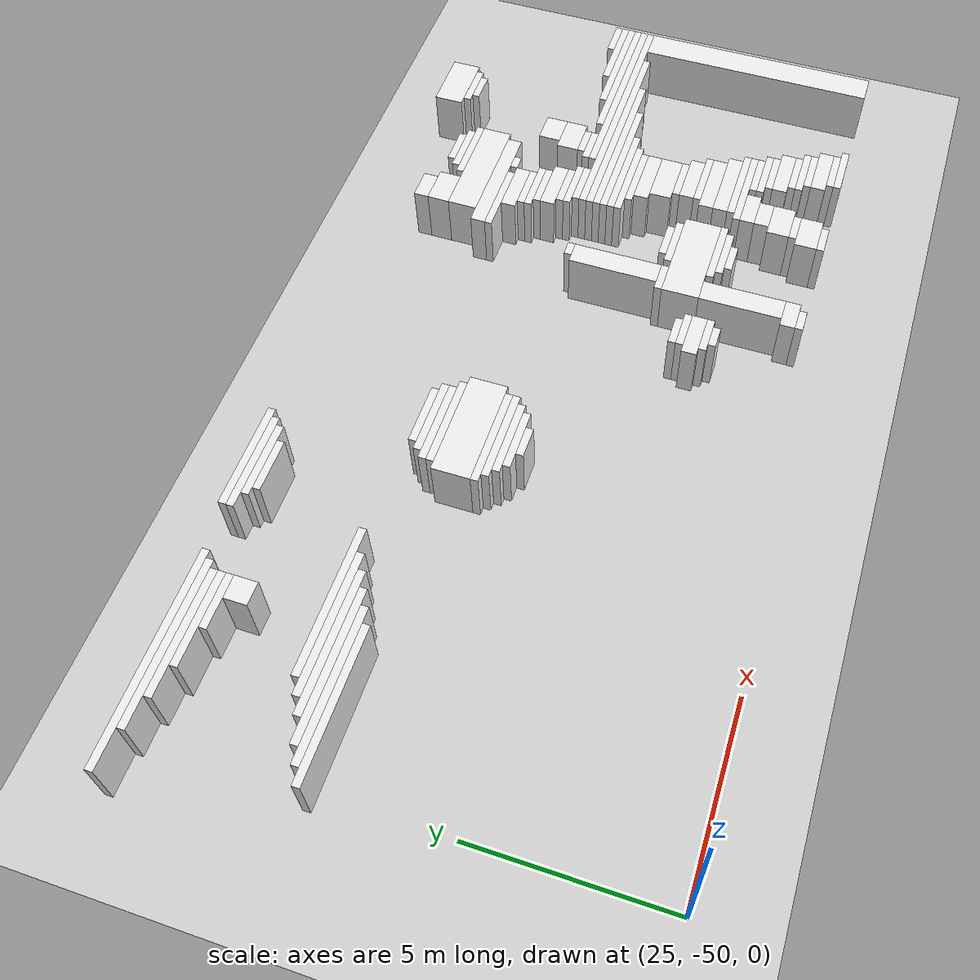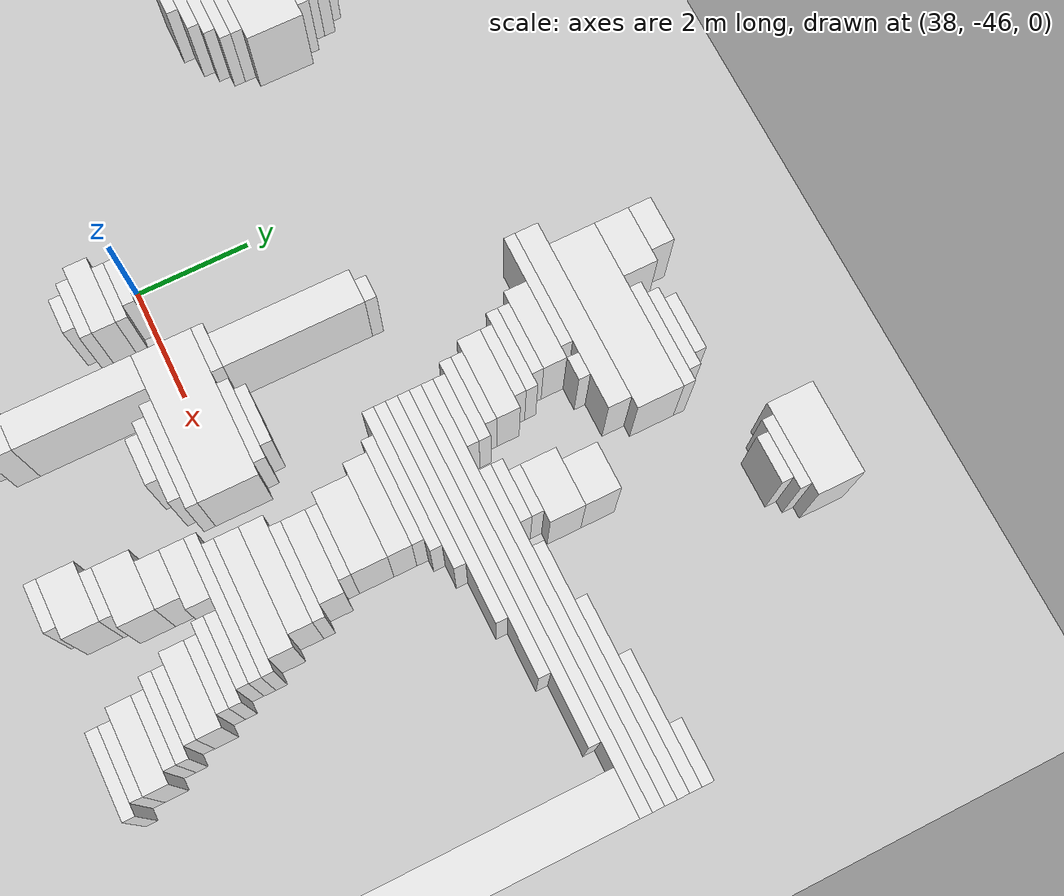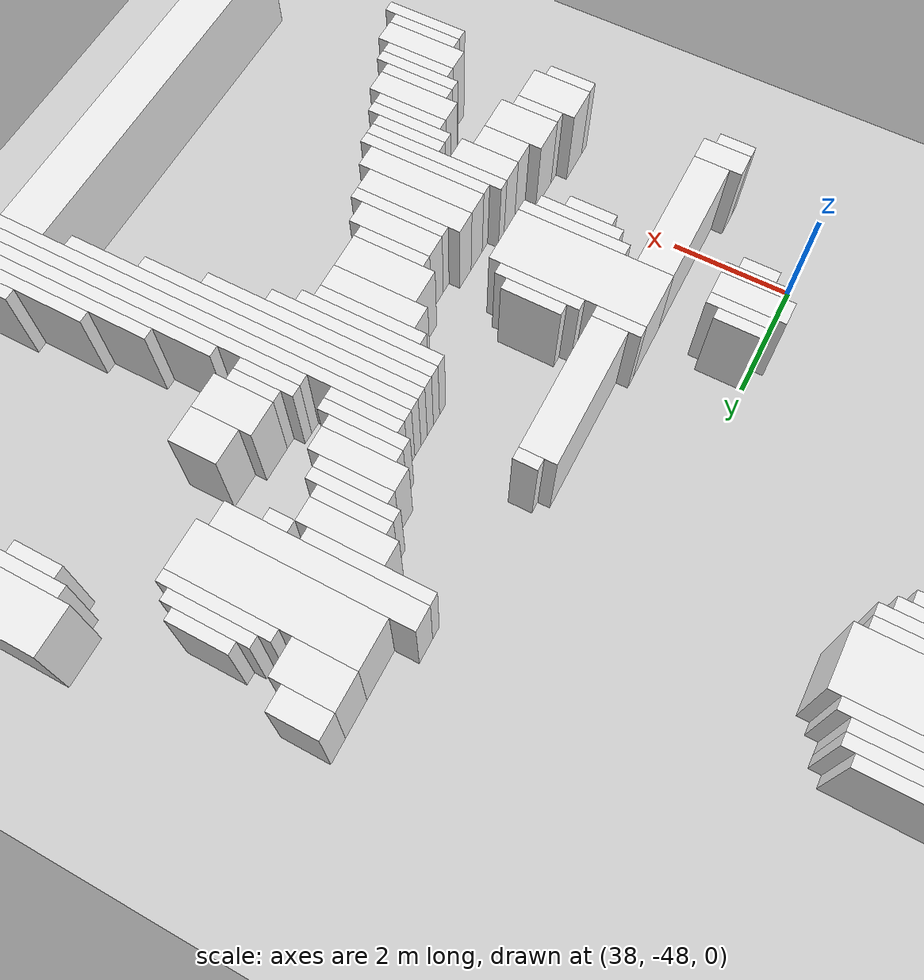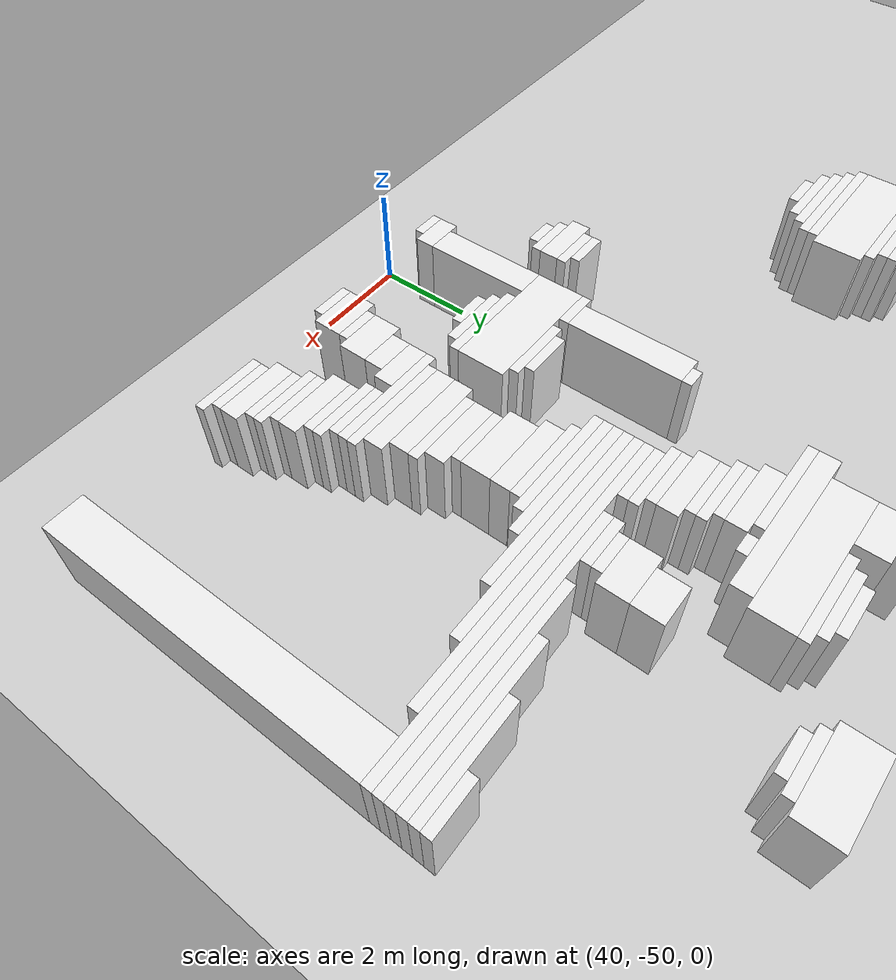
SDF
<sdf version="1.7">
 <world name="default">
  <model name="ground_plane">
   <static>1</static>
   <link name="link">
    <collision name="collision">
     <geometry><plane><normal>0 0 1</normal><size>120 120</size></plane></geometry>
    </collision>
    <visual name="visual">
     <geometry><plane><normal>0 0 1</normal><size>120 120</size></plane></geometry>
     <material>
      <script><uri>file://media/materials/scripts/gazebo.material</uri><name>Gazebo/Grey</name></script>
     </material>
    </visual>
   </link>
  </model>
  <model name="random_complex_02_model">
   <static>1</static>
   <link name="obs_3238">
    <pose>31.6000 -37.3000 0.8000 0 0 0</pose>
    <collision name="obs_3238_col"><geometry><box><size>2.8000 0.2000 1.6000</size></box></geometry></collision>
    <visual name="obs_3238_vis">
     <geometry><box><size>2.8000 0.2000 1.6000</size></box></geometry>
     <material>
      <script><uri>file://media/materials/scripts/gazebo.material</uri><name>Gazebo/White</name></script>
     </material>
    </visual>
   </link>
   <link name="obs_3243">
    <pose>26.3000 -37.5000 0.8000 0 0 0</pose>
    <collision name="obs_3243_col"><geometry><box><size>5.4000 0.2000 1.6000</size></box></geometry></collision>
    <visual name="obs_3243_vis">
     <geometry><box><size>5.4000 0.2000 1.6000</size></box></geometry>
     <material>
      <script><uri>file://media/materials/scripts/gazebo.material</uri><name>Gazebo/White</name></script>
     </material>
    </visual>
   </link>
   <link name="obs_3244">
    <pose>31.5000 -37.5000 0.8000 0 0 0</pose>
    <collision name="obs_3244_col"><geometry><box><size>2.6000 0.2000 1.6000</size></box></geometry></collision>
    <visual name="obs_3244_vis">
     <geometry><box><size>2.6000 0.2000 1.6000</size></box></geometry>
     <material>
      <script><uri>file://media/materials/scripts/gazebo.material</uri><name>Gazebo/White</name></script>
     </material>
    </visual>
   </link>
   <link name="obs_3248">
    <pose>26.7000 -37.7000 0.8000 0 0 0</pose>
    <collision name="obs_3248_col"><geometry><box><size>4.2000 0.2000 1.6000</size></box></geometry></collision>
    <visual name="obs_3248_vis">
     <geometry><box><size>4.2000 0.2000 1.6000</size></box></geometry>
     <material>
      <script><uri>file://media/materials/scripts/gazebo.material</uri><name>Gazebo/White</name></script>
     </material>
    </visual>
   </link>
   <link name="obs_3249">
    <pose>31.6000 -37.7000 0.8000 0 0 0</pose>
    <collision name="obs_3249_col"><geometry><box><size>2.0000 0.2000 1.6000</size></box></geometry></collision>
    <visual name="obs_3249_vis">
     <geometry><box><size>2.0000 0.2000 1.6000</size></box></geometry>
     <material>
      <script><uri>file://media/materials/scripts/gazebo.material</uri><name>Gazebo/White</name></script>
     </material>
    </visual>
   </link>
   <link name="obs_3252">
    <pose>45.4000 -37.6000 0.8000 0 0 0</pose>
    <collision name="obs_3252_col"><geometry><box><size>1.6000 0.8000 1.6000</size></box></geometry></collision>
    <visual name="obs_3252_vis">
     <geometry><box><size>1.6000 0.8000 1.6000</size></box></geometry>
     <material>
      <script><uri>file://media/materials/scripts/gazebo.material</uri><name>Gazebo/White</name></script>
     </material>
    </visual>
   </link>
   <link name="obs_3255">
    <pose>27.0000 -37.9000 0.8000 0 0 0</pose>
    <collision name="obs_3255_col"><geometry><box><size>3.2000 0.2000 1.6000</size></box></geometry></collision>
    <visual name="obs_3255_vis">
     <geometry><box><size>3.2000 0.2000 1.6000</size></box></geometry>
     <material>
      <script><uri>file://media/materials/scripts/gazebo.material</uri><name>Gazebo/White</name></script>
     </material>
    </visual>
   </link>
   <link name="obs_3256">
    <pose>31.5000 -37.9000 0.8000 0 0 0</pose>
    <collision name="obs_3256_col"><geometry><box><size>1.4000 0.2000 1.6000</size></box></geometry></collision>
    <visual name="obs_3256_vis">
     <geometry><box><size>1.4000 0.2000 1.6000</size></box></geometry>
     <material>
      <script><uri>file://media/materials/scripts/gazebo.material</uri><name>Gazebo/White</name></script>
     </material>
    </visual>
   </link>
   <link name="obs_3261">
    <pose>27.4000 -38.1000 0.8000 0 0 0</pose>
    <collision name="obs_3261_col"><geometry><box><size>2.4000 0.2000 1.6000</size></box></geometry></collision>
    <visual name="obs_3261_vis">
     <geometry><box><size>2.4000 0.2000 1.6000</size></box></geometry>
     <material>
      <script><uri>file://media/materials/scripts/gazebo.material</uri><name>Gazebo/White</name></script>
     </material>
    </visual>
   </link>
   <link name="obs_3262">
    <pose>45.4000 -38.1000 0.8000 0 0 0</pose>
    <collision name="obs_3262_col"><geometry><box><size>1.2000 0.2000 1.6000</size></box></geometry></collision>
    <visual name="obs_3262_vis">
     <geometry><box><size>1.2000 0.2000 1.6000</size></box></geometry>
     <material>
      <script><uri>file://media/materials/scripts/gazebo.material</uri><name>Gazebo/White</name></script>
     </material>
    </visual>
   </link>
   <link name="obs_3263">
    <pose>41.2000 -38.2000 0.8000 0 0 0</pose>
    <collision name="obs_3263_col"><geometry><box><size>0.8000 0.4000 1.6000</size></box></geometry></collision>
    <visual name="obs_3263_vis">
     <geometry><box><size>0.8000 0.4000 1.6000</size></box></geometry>
     <material>
      <script><uri>file://media/materials/scripts/gazebo.material</uri><name>Gazebo/White</name></script>
     </material>
    </visual>
   </link>
   <link name="obs_3265">
    <pose>27.9000 -38.3000 0.8000 0 0 0</pose>
    <collision name="obs_3265_col"><geometry><box><size>1.4000 0.2000 1.6000</size></box></geometry></collision>
    <visual name="obs_3265_vis">
     <geometry><box><size>1.4000 0.2000 1.6000</size></box></geometry>
     <material>
      <script><uri>file://media/materials/scripts/gazebo.material</uri><name>Gazebo/White</name></script>
     </material>
    </visual>
   </link>
   <link name="obs_3266">
    <pose>45.4000 -38.3000 0.8000 0 0 0</pose>
    <collision name="obs_3266_col"><geometry><box><size>0.8000 0.2000 1.6000</size></box></geometry></collision>
    <visual name="obs_3266_vis">
     <geometry><box><size>0.8000 0.2000 1.6000</size></box></geometry>
     <material>
      <script><uri>file://media/materials/scripts/gazebo.material</uri><name>Gazebo/White</name></script>
     </material>
    </visual>
   </link>
   <link name="obs_3270">
    <pose>42.9000 -38.5000 0.8000 0 0 0</pose>
    <collision name="obs_3270_col"><geometry><box><size>1.0000 0.2000 1.6000</size></box></geometry></collision>
    <visual name="obs_3270_vis">
     <geometry><box><size>1.0000 0.2000 1.6000</size></box></geometry>
     <material>
      <script><uri>file://media/materials/scripts/gazebo.material</uri><name>Gazebo/White</name></script>
     </material>
    </visual>
   </link>
   <link name="obs_3279">
    <pose>42.9000 -38.7000 0.8000 0 0 0</pose>
    <collision name="obs_3279_col"><geometry><box><size>1.4000 0.2000 1.6000</size></box></geometry></collision>
    <visual name="obs_3279_vis">
     <geometry><box><size>1.4000 0.2000 1.6000</size></box></geometry>
     <material>
      <script><uri>file://media/materials/scripts/gazebo.material</uri><name>Gazebo/White</name></script>
     </material>
    </visual>
   </link>
   <link name="obs_3281">
    <pose>28.3000 -38.7000 0.8000 0 0 0</pose>
    <collision name="obs_3281_col"><geometry><box><size>0.6000 0.6000 1.6000</size></box></geometry></collision>
    <visual name="obs_3281_vis">
     <geometry><box><size>0.6000 0.6000 1.6000</size></box></geometry>
     <material>
      <script><uri>file://media/materials/scripts/gazebo.material</uri><name>Gazebo/White</name></script>
     </material>
    </visual>
   </link>
   <link name="obs_3282">
    <pose>41.3000 -38.7000 0.8000 0 0 0</pose>
    <collision name="obs_3282_col"><geometry><box><size>1.0000 0.6000 1.6000</size></box></geometry></collision>
    <visual name="obs_3282_vis">
     <geometry><box><size>1.0000 0.6000 1.6000</size></box></geometry>
     <material>
      <script><uri>file://media/materials/scripts/gazebo.material</uri><name>Gazebo/White</name></script>
     </material>
    </visual>
   </link>
   <link name="obs_3288">
    <pose>42.9000 -38.9000 0.8000 0 0 0</pose>
    <collision name="obs_3288_col"><geometry><box><size>1.8000 0.2000 1.6000</size></box></geometry></collision>
    <visual name="obs_3288_vis">
     <geometry><box><size>1.8000 0.2000 1.6000</size></box></geometry>
     <material>
      <script><uri>file://media/materials/scripts/gazebo.material</uri><name>Gazebo/White</name></script>
     </material>
    </visual>
   </link>
   <link name="obs_3302">
    <pose>42.3000 -39.4000 0.8000 0 0 0</pose>
    <collision name="obs_3302_col"><geometry><box><size>3.0000 0.8000 1.6000</size></box></geometry></collision>
    <visual name="obs_3302_vis">
     <geometry><box><size>3.0000 0.8000 1.6000</size></box></geometry>
     <material>
      <script><uri>file://media/materials/scripts/gazebo.material</uri><name>Gazebo/White</name></script>
     </material>
    </visual>
   </link>
   <link name="obs_3312">
    <pose>42.0000 -40.0000 0.8000 0 0 0</pose>
    <collision name="obs_3312_col"><geometry><box><size>3.2000 0.4000 1.6000</size></box></geometry></collision>
    <visual name="obs_3312_vis">
     <geometry><box><size>3.2000 0.4000 1.6000</size></box></geometry>
     <material>
      <script><uri>file://media/materials/scripts/gazebo.material</uri><name>Gazebo/White</name></script>
     </material>
    </visual>
   </link>
   <link name="obs_3320">
    <pose>41.4000 -40.3000 0.8000 0 0 0</pose>
    <collision name="obs_3320_col"><geometry><box><size>2.0000 0.2000 1.6000</size></box></geometry></collision>
    <visual name="obs_3320_vis">
     <geometry><box><size>2.0000 0.2000 1.6000</size></box></geometry>
     <material>
      <script><uri>file://media/materials/scripts/gazebo.material</uri><name>Gazebo/White</name></script>
     </material>
    </visual>
   </link>
   <link name="obs_3321">
    <pose>42.8000 -40.3000 0.8000 0 0 0</pose>
    <collision name="obs_3321_col"><geometry><box><size>0.4000 0.2000 1.6000</size></box></geometry></collision>
    <visual name="obs_3321_vis">
     <geometry><box><size>0.4000 0.2000 1.6000</size></box></geometry>
     <material>
      <script><uri>file://media/materials/scripts/gazebo.material</uri><name>Gazebo/White</name></script>
     </material>
    </visual>
   </link>
   <link name="obs_3327">
    <pose>41.9000 -40.6000 0.8000 0 0 0</pose>
    <collision name="obs_3327_col"><geometry><box><size>1.4000 0.4000 1.6000</size></box></geometry></collision>
    <visual name="obs_3327_vis">
     <geometry><box><size>1.4000 0.4000 1.6000</size></box></geometry>
     <material>
      <script><uri>file://media/materials/scripts/gazebo.material</uri><name>Gazebo/White</name></script>
     </material>
    </visual>
   </link>
   <link name="obs_3334">
    <pose>28.7000 -40.7000 0.8000 0 0 0</pose>
    <collision name="obs_3334_col"><geometry><box><size>3.8000 0.2000 1.6000</size></box></geometry></collision>
    <visual name="obs_3334_vis">
     <geometry><box><size>3.8000 0.2000 1.6000</size></box></geometry>
     <material>
      <script><uri>file://media/materials/scripts/gazebo.material</uri><name>Gazebo/White</name></script>
     </material>
    </visual>
   </link>
   <link name="obs_3340">
    <pose>28.2000 -40.9000 0.8000 0 0 0</pose>
    <collision name="obs_3340_col"><geometry><box><size>3.6000 0.2000 1.6000</size></box></geometry></collision>
    <visual name="obs_3340_vis">
     <geometry><box><size>3.6000 0.2000 1.6000</size></box></geometry>
     <material>
      <script><uri>file://media/materials/scripts/gazebo.material</uri><name>Gazebo/White</name></script>
     </material>
    </visual>
   </link>
   <link name="obs_3341">
    <pose>34.0000 -40.9000 0.8000 0 0 0</pose>
    <collision name="obs_3341_col"><geometry><box><size>1.6000 0.2000 1.6000</size></box></geometry></collision>
    <visual name="obs_3341_vis">
     <geometry><box><size>1.6000 0.2000 1.6000</size></box></geometry>
     <material>
      <script><uri>file://media/materials/scripts/gazebo.material</uri><name>Gazebo/White</name></script>
     </material>
    </visual>
   </link>
   <link name="obs_3342">
    <pose>42.0000 -40.9000 0.8000 0 0 0</pose>
    <collision name="obs_3342_col"><geometry><box><size>1.2000 0.2000 1.6000</size></box></geometry></collision>
    <visual name="obs_3342_vis">
     <geometry><box><size>1.2000 0.2000 1.6000</size></box></geometry>
     <material>
      <script><uri>file://media/materials/scripts/gazebo.material</uri><name>Gazebo/White</name></script>
     </material>
    </visual>
   </link>
   <link name="obs_3343">
    <pose>44.4000 -40.9000 0.8000 0 0 0</pose>
    <collision name="obs_3343_col"><geometry><box><size>0.8000 0.6000 1.6000</size></box></geometry></collision>
    <visual name="obs_3343_vis">
     <geometry><box><size>0.8000 0.6000 1.6000</size></box></geometry>
     <material>
      <script><uri>file://media/materials/scripts/gazebo.material</uri><name>Gazebo/White</name></script>
     </material>
    </visual>
   </link>
   <link name="obs_3349">
    <pose>27.8000 -41.1000 0.8000 0 0 0</pose>
    <collision name="obs_3349_col"><geometry><box><size>3.6000 0.2000 1.6000</size></box></geometry></collision>
    <visual name="obs_3349_vis">
     <geometry><box><size>3.6000 0.2000 1.6000</size></box></geometry>
     <material>
      <script><uri>file://media/materials/scripts/gazebo.material</uri><name>Gazebo/White</name></script>
     </material>
    </visual>
   </link>
   <link name="obs_3350">
    <pose>34.0000 -41.1000 0.8000 0 0 0</pose>
    <collision name="obs_3350_col"><geometry><box><size>2.0000 0.2000 1.6000</size></box></geometry></collision>
    <visual name="obs_3350_vis">
     <geometry><box><size>2.0000 0.2000 1.6000</size></box></geometry>
     <material>
      <script><uri>file://media/materials/scripts/gazebo.material</uri><name>Gazebo/White</name></script>
     </material>
    </visual>
   </link>
   <link name="obs_3351">
    <pose>42.1000 -41.1000 0.8000 0 0 0</pose>
    <collision name="obs_3351_col"><geometry><box><size>1.4000 0.2000 1.6000</size></box></geometry></collision>
    <visual name="obs_3351_vis">
     <geometry><box><size>1.4000 0.2000 1.6000</size></box></geometry>
     <material>
      <script><uri>file://media/materials/scripts/gazebo.material</uri><name>Gazebo/White</name></script>
     </material>
    </visual>
   </link>
   <link name="obs_3357">
    <pose>27.3000 -41.3000 0.8000 0 0 0</pose>
    <collision name="obs_3357_col"><geometry><box><size>3.8000 0.2000 1.6000</size></box></geometry></collision>
    <visual name="obs_3357_vis">
     <geometry><box><size>3.8000 0.2000 1.6000</size></box></geometry>
     <material>
      <script><uri>file://media/materials/scripts/gazebo.material</uri><name>Gazebo/White</name></script>
     </material>
    </visual>
   </link>
   <link name="obs_3358">
    <pose>33.9000 -41.3000 0.8000 0 0 0</pose>
    <collision name="obs_3358_col"><geometry><box><size>2.2000 0.2000 1.6000</size></box></geometry></collision>
    <visual name="obs_3358_vis">
     <geometry><box><size>2.2000 0.2000 1.6000</size></box></geometry>
     <material>
      <script><uri>file://media/materials/scripts/gazebo.material</uri><name>Gazebo/White</name></script>
     </material>
    </visual>
   </link>
   <link name="obs_3359">
    <pose>42.2000 -41.3000 0.8000 0 0 0</pose>
    <collision name="obs_3359_col"><geometry><box><size>1.2000 0.2000 1.6000</size></box></geometry></collision>
    <visual name="obs_3359_vis">
     <geometry><box><size>1.2000 0.2000 1.6000</size></box></geometry>
     <material>
      <script><uri>file://media/materials/scripts/gazebo.material</uri><name>Gazebo/White</name></script>
     </material>
    </visual>
   </link>
   <link name="obs_3364">
    <pose>26.9000 -41.5000 0.8000 0 0 0</pose>
    <collision name="obs_3364_col"><geometry><box><size>3.8000 0.2000 1.6000</size></box></geometry></collision>
    <visual name="obs_3364_vis">
     <geometry><box><size>3.8000 0.2000 1.6000</size></box></geometry>
     <material>
      <script><uri>file://media/materials/scripts/gazebo.material</uri><name>Gazebo/White</name></script>
     </material>
    </visual>
   </link>
   <link name="obs_3365">
    <pose>34.0000 -41.5000 0.8000 0 0 0</pose>
    <collision name="obs_3365_col"><geometry><box><size>2.4000 0.2000 1.6000</size></box></geometry></collision>
    <visual name="obs_3365_vis">
     <geometry><box><size>2.4000 0.2000 1.6000</size></box></geometry>
     <material>
      <script><uri>file://media/materials/scripts/gazebo.material</uri><name>Gazebo/White</name></script>
     </material>
    </visual>
   </link>
   <link name="obs_3366">
    <pose>48.7000 -41.5000 0.8000 0 0 0</pose>
    <collision name="obs_3366_col"><geometry><box><size>1.0000 0.2000 1.6000</size></box></geometry></collision>
    <visual name="obs_3366_vis">
     <geometry><box><size>1.0000 0.2000 1.6000</size></box></geometry>
     <material>
      <script><uri>file://media/materials/scripts/gazebo.material</uri><name>Gazebo/White</name></script>
     </material>
    </visual>
   </link>
   <link name="obs_3367">
    <pose>44.3000 -41.5000 0.8000 0 0 0</pose>
    <collision name="obs_3367_col"><geometry><box><size>1.0000 0.6000 1.6000</size></box></geometry></collision>
    <visual name="obs_3367_vis">
     <geometry><box><size>1.0000 0.6000 1.6000</size></box></geometry>
     <material>
      <script><uri>file://media/materials/scripts/gazebo.material</uri><name>Gazebo/White</name></script>
     </material>
    </visual>
   </link>
   <link name="obs_3368">
    <pose>42.3000 -41.6000 0.8000 0 0 0</pose>
    <collision name="obs_3368_col"><geometry><box><size>1.4000 0.4000 1.6000</size></box></geometry></collision>
    <visual name="obs_3368_vis">
     <geometry><box><size>1.4000 0.4000 1.6000</size></box></geometry>
     <material>
      <script><uri>file://media/materials/scripts/gazebo.material</uri><name>Gazebo/White</name></script>
     </material>
    </visual>
   </link>
   <link name="obs_3374">
    <pose>26.5000 -41.7000 0.8000 0 0 0</pose>
    <collision name="obs_3374_col"><geometry><box><size>3.8000 0.2000 1.6000</size></box></geometry></collision>
    <visual name="obs_3374_vis">
     <geometry><box><size>3.8000 0.2000 1.6000</size></box></geometry>
     <material>
      <script><uri>file://media/materials/scripts/gazebo.material</uri><name>Gazebo/White</name></script>
     </material>
    </visual>
   </link>
   <link name="obs_3375">
    <pose>48.1000 -41.7000 0.8000 0 0 0</pose>
    <collision name="obs_3375_col"><geometry><box><size>2.2000 0.2000 1.6000</size></box></geometry></collision>
    <visual name="obs_3375_vis">
     <geometry><box><size>2.2000 0.2000 1.6000</size></box></geometry>
     <material>
      <script><uri>file://media/materials/scripts/gazebo.material</uri><name>Gazebo/White</name></script>
     </material>
    </visual>
   </link>
   <link name="obs_3384">
    <pose>42.4000 -41.9000 0.8000 0 0 0</pose>
    <collision name="obs_3384_col"><geometry><box><size>1.2000 0.2000 1.6000</size></box></geometry></collision>
    <visual name="obs_3384_vis">
     <geometry><box><size>1.2000 0.2000 1.6000</size></box></geometry>
     <material>
      <script><uri>file://media/materials/scripts/gazebo.material</uri><name>Gazebo/White</name></script>
     </material>
    </visual>
   </link>
   <link name="obs_3385">
    <pose>44.2000 -41.9000 0.8000 0 0 0</pose>
    <collision name="obs_3385_col"><geometry><box><size>0.8000 0.2000 1.6000</size></box></geometry></collision>
    <visual name="obs_3385_vis">
     <geometry><box><size>0.8000 0.2000 1.6000</size></box></geometry>
     <material>
      <script><uri>file://media/materials/scripts/gazebo.material</uri><name>Gazebo/White</name></script>
     </material>
    </visual>
   </link>
   <link name="obs_3386">
    <pose>47.6000 -41.9000 0.8000 0 0 0</pose>
    <collision name="obs_3386_col"><geometry><box><size>3.2000 0.2000 1.6000</size></box></geometry></collision>
    <visual name="obs_3386_vis">
     <geometry><box><size>3.2000 0.2000 1.6000</size></box></geometry>
     <material>
      <script><uri>file://media/materials/scripts/gazebo.material</uri><name>Gazebo/White</name></script>
     </material>
    </visual>
   </link>
   <link name="obs_3393">
    <pose>42.5000 -42.1000 0.8000 0 0 0</pose>
    <collision name="obs_3393_col"><geometry><box><size>1.4000 0.2000 1.6000</size></box></geometry></collision>
    <visual name="obs_3393_vis">
     <geometry><box><size>1.4000 0.2000 1.6000</size></box></geometry>
     <material>
      <script><uri>file://media/materials/scripts/gazebo.material</uri><name>Gazebo/White</name></script>
     </material>
    </visual>
   </link>
   <link name="obs_3394">
    <pose>44.1000 -42.1000 0.8000 0 0 0</pose>
    <collision name="obs_3394_col"><geometry><box><size>1.0000 0.2000 1.6000</size></box></geometry></collision>
    <visual name="obs_3394_vis">
     <geometry><box><size>1.0000 0.2000 1.6000</size></box></geometry>
     <material>
      <script><uri>file://media/materials/scripts/gazebo.material</uri><name>Gazebo/White</name></script>
     </material>
    </visual>
   </link>
   <link name="obs_3395">
    <pose>47.1000 -42.1000 0.8000 0 0 0</pose>
    <collision name="obs_3395_col"><geometry><box><size>4.2000 0.2000 1.6000</size></box></geometry></collision>
    <visual name="obs_3395_vis">
     <geometry><box><size>4.2000 0.2000 1.6000</size></box></geometry>
     <material>
      <script><uri>file://media/materials/scripts/gazebo.material</uri><name>Gazebo/White</name></script>
     </material>
    </visual>
   </link>
   <link name="obs_3400">
    <pose>42.6000 -42.3000 0.8000 0 0 0</pose>
    <collision name="obs_3400_col"><geometry><box><size>1.2000 0.2000 1.6000</size></box></geometry></collision>
    <visual name="obs_3400_vis">
     <geometry><box><size>1.2000 0.2000 1.6000</size></box></geometry>
     <material>
      <script><uri>file://media/materials/scripts/gazebo.material</uri><name>Gazebo/White</name></script>
     </material>
    </visual>
   </link>
   <link name="obs_3401">
    <pose>46.4000 -42.3000 0.8000 0 0 0</pose>
    <collision name="obs_3401_col"><geometry><box><size>5.6000 0.2000 1.6000</size></box></geometry></collision>
    <visual name="obs_3401_vis">
     <geometry><box><size>5.6000 0.2000 1.6000</size></box></geometry>
     <material>
      <script><uri>file://media/materials/scripts/gazebo.material</uri><name>Gazebo/White</name></script>
     </material>
    </visual>
   </link>
   <link name="obs_3402">
    <pose>34.0000 -42.1000 0.8000 0 0 0</pose>
    <collision name="obs_3402_col"><geometry><box><size>2.8000 1.0000 1.6000</size></box></geometry></collision>
    <visual name="obs_3402_vis">
     <geometry><box><size>2.8000 1.0000 1.6000</size></box></geometry>
     <material>
      <script><uri>file://media/materials/scripts/gazebo.material</uri><name>Gazebo/White</name></script>
     </material>
    </visual>
   </link>
   <link name="obs_3407">
    <pose>45.6000 -42.5000 0.8000 0 0 0</pose>
    <collision name="obs_3407_col"><geometry><box><size>7.2000 0.2000 1.6000</size></box></geometry></collision>
    <visual name="obs_3407_vis">
     <geometry><box><size>7.2000 0.2000 1.6000</size></box></geometry>
     <material>
      <script><uri>file://media/materials/scripts/gazebo.material</uri><name>Gazebo/White</name></script>
     </material>
    </visual>
   </link>
   <link name="obs_3411">
    <pose>33.9000 -42.7000 0.8000 0 0 0</pose>
    <collision name="obs_3411_col"><geometry><box><size>2.6000 0.2000 1.6000</size></box></geometry></collision>
    <visual name="obs_3411_vis">
     <geometry><box><size>2.6000 0.2000 1.6000</size></box></geometry>
     <material>
      <script><uri>file://media/materials/scripts/gazebo.material</uri><name>Gazebo/White</name></script>
     </material>
    </visual>
   </link>
   <link name="obs_3412">
    <pose>40.2000 -42.7000 0.8000 0 0 0</pose>
    <collision name="obs_3412_col"><geometry><box><size>0.4000 0.2000 1.6000</size></box></geometry></collision>
    <visual name="obs_3412_vis">
     <geometry><box><size>0.4000 0.2000 1.6000</size></box></geometry>
     <material>
      <script><uri>file://media/materials/scripts/gazebo.material</uri><name>Gazebo/White</name></script>
     </material>
    </visual>
   </link>
   <link name="obs_3413">
    <pose>45.0000 -42.7000 0.8000 0 0 0</pose>
    <collision name="obs_3413_col"><geometry><box><size>6.0000 0.2000 1.6000</size></box></geometry></collision>
    <visual name="obs_3413_vis">
     <geometry><box><size>6.0000 0.2000 1.6000</size></box></geometry>
     <material>
      <script><uri>file://media/materials/scripts/gazebo.material</uri><name>Gazebo/White</name></script>
     </material>
    </visual>
   </link>
   <link name="obs_3420">
    <pose>34.0000 -42.9000 0.8000 0 0 0</pose>
    <collision name="obs_3420_col"><geometry><box><size>2.4000 0.2000 1.6000</size></box></geometry></collision>
    <visual name="obs_3420_vis">
     <geometry><box><size>2.4000 0.2000 1.6000</size></box></geometry>
     <material>
      <script><uri>file://media/materials/scripts/gazebo.material</uri><name>Gazebo/White</name></script>
     </material>
    </visual>
   </link>
   <link name="obs_3421">
    <pose>44.4000 -42.9000 0.8000 0 0 0</pose>
    <collision name="obs_3421_col"><geometry><box><size>4.8000 0.2000 1.6000</size></box></geometry></collision>
    <visual name="obs_3421_vis">
     <geometry><box><size>4.8000 0.2000 1.6000</size></box></geometry>
     <material>
      <script><uri>file://media/materials/scripts/gazebo.material</uri><name>Gazebo/White</name></script>
     </material>
    </visual>
   </link>
   <link name="obs_3427">
    <pose>34.0000 -43.1000 0.8000 0 0 0</pose>
    <collision name="obs_3427_col"><geometry><box><size>2.0000 0.2000 1.6000</size></box></geometry></collision>
    <visual name="obs_3427_vis">
     <geometry><box><size>2.0000 0.2000 1.6000</size></box></geometry>
     <material>
      <script><uri>file://media/materials/scripts/gazebo.material</uri><name>Gazebo/White</name></script>
     </material>
    </visual>
   </link>
   <link name="obs_3428">
    <pose>43.9000 -43.1000 0.8000 0 0 0</pose>
    <collision name="obs_3428_col"><geometry><box><size>3.8000 0.2000 1.6000</size></box></geometry></collision>
    <visual name="obs_3428_vis">
     <geometry><box><size>3.8000 0.2000 1.6000</size></box></geometry>
     <material>
      <script><uri>file://media/materials/scripts/gazebo.material</uri><name>Gazebo/White</name></script>
     </material>
    </visual>
   </link>
   <link name="obs_3435">
    <pose>34.0000 -43.3000 0.8000 0 0 0</pose>
    <collision name="obs_3435_col"><geometry><box><size>1.6000 0.2000 1.6000</size></box></geometry></collision>
    <visual name="obs_3435_vis">
     <geometry><box><size>1.6000 0.2000 1.6000</size></box></geometry>
     <material>
      <script><uri>file://media/materials/scripts/gazebo.material</uri><name>Gazebo/White</name></script>
     </material>
    </visual>
   </link>
   <link name="obs_3436">
    <pose>43.4000 -43.3000 0.8000 0 0 0</pose>
    <collision name="obs_3436_col"><geometry><box><size>2.8000 0.2000 1.6000</size></box></geometry></collision>
    <visual name="obs_3436_vis">
     <geometry><box><size>2.8000 0.2000 1.6000</size></box></geometry>
     <material>
      <script><uri>file://media/materials/scripts/gazebo.material</uri><name>Gazebo/White</name></script>
     </material>
    </visual>
   </link>
   <link name="obs_3440">
    <pose>34.0000 -43.5000 0.8000 0 0 0</pose>
    <collision name="obs_3440_col"><geometry><box><size>0.8000 0.2000 1.6000</size></box></geometry></collision>
    <visual name="obs_3440_vis">
     <geometry><box><size>0.8000 0.2000 1.6000</size></box></geometry>
     <material>
      <script><uri>file://media/materials/scripts/gazebo.material</uri><name>Gazebo/White</name></script>
     </material>
    </visual>
   </link>
   <link name="obs_3441">
    <pose>43.2000 -43.5000 0.8000 0 0 0</pose>
    <collision name="obs_3441_col"><geometry><box><size>2.4000 0.2000 1.6000</size></box></geometry></collision>
    <visual name="obs_3441_vis">
     <geometry><box><size>2.4000 0.2000 1.6000</size></box></geometry>
     <material>
      <script><uri>file://media/materials/scripts/gazebo.material</uri><name>Gazebo/White</name></script>
     </material>
    </visual>
   </link>
   <link name="obs_3447">
    <pose>43.3000 -43.7000 0.8000 0 0 0</pose>
    <collision name="obs_3447_col"><geometry><box><size>1.8000 0.2000 1.6000</size></box></geometry></collision>
    <visual name="obs_3447_vis">
     <geometry><box><size>1.8000 0.2000 1.6000</size></box></geometry>
     <material>
      <script><uri>file://media/materials/scripts/gazebo.material</uri><name>Gazebo/White</name></script>
     </material>
    </visual>
   </link>
   <link name="obs_3458">
    <pose>43.4000 -44.0000 0.8000 0 0 0</pose>
    <collision name="obs_3458_col"><geometry><box><size>1.6000 0.4000 1.6000</size></box></geometry></collision>
    <visual name="obs_3458_vis">
     <geometry><box><size>1.6000 0.4000 1.6000</size></box></geometry>
     <material>
      <script><uri>file://media/materials/scripts/gazebo.material</uri><name>Gazebo/White</name></script>
     </material>
    </visual>
   </link>
   <link name="obs_3483">
    <pose>43.5000 -44.5000 0.8000 0 0 0</pose>
    <collision name="obs_3483_col"><geometry><box><size>1.4000 0.6000 1.6000</size></box></geometry></collision>
    <visual name="obs_3483_vis">
     <geometry><box><size>1.4000 0.6000 1.6000</size></box></geometry>
     <material>
      <script><uri>file://media/materials/scripts/gazebo.material</uri><name>Gazebo/White</name></script>
     </material>
    </visual>
   </link>
   <link name="obs_3500">
    <pose>43.6000 -44.9000 0.8000 0 0 0</pose>
    <collision name="obs_3500_col"><geometry><box><size>1.2000 0.2000 1.6000</size></box></geometry></collision>
    <visual name="obs_3500_vis">
     <geometry><box><size>1.2000 0.2000 1.6000</size></box></geometry>
     <material>
      <script><uri>file://media/materials/scripts/gazebo.material</uri><name>Gazebo/White</name></script>
     </material>
    </visual>
   </link>
   <link name="obs_3501">
    <pose>40.1000 -44.0000 0.8000 0 0 0</pose>
    <collision name="obs_3501_col"><geometry><box><size>0.6000 2.4000 1.6000</size></box></geometry></collision>
    <visual name="obs_3501_vis">
     <geometry><box><size>0.6000 2.4000 1.6000</size></box></geometry>
     <material>
      <script><uri>file://media/materials/scripts/gazebo.material</uri><name>Gazebo/White</name></script>
     </material>
    </visual>
   </link>
   <link name="obs_3510">
    <pose>41.3000 -45.1000 0.8000 0 0 0</pose>
    <collision name="obs_3510_col"><geometry><box><size>1.0000 0.2000 1.6000</size></box></geometry></collision>
    <visual name="obs_3510_vis">
     <geometry><box><size>1.0000 0.2000 1.6000</size></box></geometry>
     <material>
      <script><uri>file://media/materials/scripts/gazebo.material</uri><name>Gazebo/White</name></script>
     </material>
    </visual>
   </link>
   <link name="obs_3513">
    <pose>43.7000 -45.2000 0.8000 0 0 0</pose>
    <collision name="obs_3513_col"><geometry><box><size>1.4000 0.4000 1.6000</size></box></geometry></collision>
    <visual name="obs_3513_vis">
     <geometry><box><size>1.4000 0.4000 1.6000</size></box></geometry>
     <material>
      <script><uri>file://media/materials/scripts/gazebo.material</uri><name>Gazebo/White</name></script>
     </material>
    </visual>
   </link>
   <link name="obs_3521">
    <pose>40.0000 -45.3000 0.8000 0 0 0</pose>
    <collision name="obs_3521_col"><geometry><box><size>0.8000 0.2000 1.6000</size></box></geometry></collision>
    <visual name="obs_3521_vis">
     <geometry><box><size>0.8000 0.2000 1.6000</size></box></geometry>
     <material>
      <script><uri>file://media/materials/scripts/gazebo.material</uri><name>Gazebo/White</name></script>
     </material>
    </visual>
   </link>
   <link name="obs_3522">
    <pose>41.3000 -45.3000 0.8000 0 0 0</pose>
    <collision name="obs_3522_col"><geometry><box><size>1.4000 0.2000 1.6000</size></box></geometry></collision>
    <visual name="obs_3522_vis">
     <geometry><box><size>1.4000 0.2000 1.6000</size></box></geometry>
     <material>
      <script><uri>file://media/materials/scripts/gazebo.material</uri><name>Gazebo/White</name></script>
     </material>
    </visual>
   </link>
   <link name="obs_3536">
    <pose>43.8000 -45.5000 0.8000 0 0 0</pose>
    <collision name="obs_3536_col"><geometry><box><size>1.6000 0.2000 1.6000</size></box></geometry></collision>
    <visual name="obs_3536_vis">
     <geometry><box><size>1.6000 0.2000 1.6000</size></box></geometry>
     <material>
      <script><uri>file://media/materials/scripts/gazebo.material</uri><name>Gazebo/White</name></script>
     </material>
    </visual>
   </link>
   <link name="obs_3545">
    <pose>43.7000 -45.8000 0.8000 0 0 0</pose>
    <collision name="obs_3545_col"><geometry><box><size>1.8000 0.4000 1.6000</size></box></geometry></collision>
    <visual name="obs_3545_vis">
     <geometry><box><size>1.8000 0.4000 1.6000</size></box></geometry>
     <material>
      <script><uri>file://media/materials/scripts/gazebo.material</uri><name>Gazebo/White</name></script>
     </material>
    </visual>
   </link>
   <link name="obs_3558">
    <pose>38.4000 -46.1000 0.8000 0 0 0</pose>
    <collision name="obs_3558_col"><geometry><box><size>0.8000 0.2000 1.6000</size></box></geometry></collision>
    <visual name="obs_3558_vis">
     <geometry><box><size>0.8000 0.2000 1.6000</size></box></geometry>
     <material>
      <script><uri>file://media/materials/scripts/gazebo.material</uri><name>Gazebo/White</name></script>
     </material>
    </visual>
   </link>
   <link name="obs_3559">
    <pose>40.9000 -45.9000 0.8000 0 0 0</pose>
    <collision name="obs_3559_col"><geometry><box><size>2.6000 1.0000 1.6000</size></box></geometry></collision>
    <visual name="obs_3559_vis">
     <geometry><box><size>2.6000 1.0000 1.6000</size></box></geometry>
     <material>
      <script><uri>file://media/materials/scripts/gazebo.material</uri><name>Gazebo/White</name></script>
     </material>
    </visual>
   </link>
   <link name="obs_3561">
    <pose>43.8000 -46.2000 0.8000 0 0 0</pose>
    <collision name="obs_3561_col"><geometry><box><size>2.0000 0.4000 1.6000</size></box></geometry></collision>
    <visual name="obs_3561_vis">
     <geometry><box><size>2.0000 0.4000 1.6000</size></box></geometry>
     <material>
      <script><uri>file://media/materials/scripts/gazebo.material</uri><name>Gazebo/White</name></script>
     </material>
    </visual>
   </link>
   <link name="obs_3568">
    <pose>38.5000 -46.3000 0.8000 0 0 0</pose>
    <collision name="obs_3568_col"><geometry><box><size>1.0000 0.2000 1.6000</size></box></geometry></collision>
    <visual name="obs_3568_vis">
     <geometry><box><size>1.0000 0.2000 1.6000</size></box></geometry>
     <material>
      <script><uri>file://media/materials/scripts/gazebo.material</uri><name>Gazebo/White</name></script>
     </material>
    </visual>
   </link>
   <link name="obs_3574">
    <pose>41.3000 -46.5000 0.8000 0 0 0</pose>
    <collision name="obs_3574_col"><geometry><box><size>1.8000 0.2000 1.6000</size></box></geometry></collision>
    <visual name="obs_3574_vis">
     <geometry><box><size>1.8000 0.2000 1.6000</size></box></geometry>
     <material>
      <script><uri>file://media/materials/scripts/gazebo.material</uri><name>Gazebo/White</name></script>
     </material>
    </visual>
   </link>
   <link name="obs_3575">
    <pose>43.9000 -46.5000 0.8000 0 0 0</pose>
    <collision name="obs_3575_col"><geometry><box><size>2.2000 0.2000 1.6000</size></box></geometry></collision>
    <visual name="obs_3575_vis">
     <geometry><box><size>2.2000 0.2000 1.6000</size></box></geometry>
     <material>
      <script><uri>file://media/materials/scripts/gazebo.material</uri><name>Gazebo/White</name></script>
     </material>
    </visual>
   </link>
   <link name="obs_3577">
    <pose>38.4000 -46.6000 0.8000 0 0 0</pose>
    <collision name="obs_3577_col"><geometry><box><size>1.2000 0.4000 1.6000</size></box></geometry></collision>
    <visual name="obs_3577_vis">
     <geometry><box><size>1.2000 0.4000 1.6000</size></box></geometry>
     <material>
      <script><uri>file://media/materials/scripts/gazebo.material</uri><name>Gazebo/White</name></script>
     </material>
    </visual>
   </link>
   <link name="obs_3583">
    <pose>41.3000 -46.7000 0.8000 0 0 0</pose>
    <collision name="obs_3583_col"><geometry><box><size>1.4000 0.2000 1.6000</size></box></geometry></collision>
    <visual name="obs_3583_vis">
     <geometry><box><size>1.4000 0.2000 1.6000</size></box></geometry>
     <material>
      <script><uri>file://media/materials/scripts/gazebo.material</uri><name>Gazebo/White</name></script>
     </material>
    </visual>
   </link>
   <link name="obs_3584">
    <pose>43.8000 -46.7000 0.8000 0 0 0</pose>
    <collision name="obs_3584_col"><geometry><box><size>2.4000 0.2000 1.6000</size></box></geometry></collision>
    <visual name="obs_3584_vis">
     <geometry><box><size>2.4000 0.2000 1.6000</size></box></geometry>
     <material>
      <script><uri>file://media/materials/scripts/gazebo.material</uri><name>Gazebo/White</name></script>
     </material>
    </visual>
   </link>
   <link name="obs_3591">
    <pose>38.5000 -46.9000 0.8000 0 0 0</pose>
    <collision name="obs_3591_col"><geometry><box><size>1.0000 0.2000 1.6000</size></box></geometry></collision>
    <visual name="obs_3591_vis">
     <geometry><box><size>1.0000 0.2000 1.6000</size></box></geometry>
     <material>
      <script><uri>file://media/materials/scripts/gazebo.material</uri><name>Gazebo/White</name></script>
     </material>
    </visual>
   </link>
   <link name="obs_3592">
    <pose>41.2000 -46.9000 0.8000 0 0 0</pose>
    <collision name="obs_3592_col"><geometry><box><size>0.8000 0.2000 1.6000</size></box></geometry></collision>
    <visual name="obs_3592_vis">
     <geometry><box><size>0.8000 0.2000 1.6000</size></box></geometry>
     <material>
      <script><uri>file://media/materials/scripts/gazebo.material</uri><name>Gazebo/White</name></script>
     </material>
    </visual>
   </link>
   <link name="obs_3593">
    <pose>44.4000 -46.9000 0.8000 0 0 0</pose>
    <collision name="obs_3593_col"><geometry><box><size>1.2000 0.2000 1.6000</size></box></geometry></collision>
    <visual name="obs_3593_vis">
     <geometry><box><size>1.2000 0.2000 1.6000</size></box></geometry>
     <material>
      <script><uri>file://media/materials/scripts/gazebo.material</uri><name>Gazebo/White</name></script>
     </material>
    </visual>
   </link>
   <link name="obs_3595">
    <pose>43.1000 -47.0000 0.8000 0 0 0</pose>
    <collision name="obs_3595_col"><geometry><box><size>1.0000 0.4000 1.6000</size></box></geometry></collision>
    <visual name="obs_3595_vis">
     <geometry><box><size>1.0000 0.4000 1.6000</size></box></geometry>
     <material>
      <script><uri>file://media/materials/scripts/gazebo.material</uri><name>Gazebo/White</name></script>
     </material>
    </visual>
   </link>
   <link name="obs_3603">
    <pose>38.5000 -47.1000 0.8000 0 0 0</pose>
    <collision name="obs_3603_col"><geometry><box><size>0.6000 0.2000 1.6000</size></box></geometry></collision>
    <visual name="obs_3603_vis">
     <geometry><box><size>0.6000 0.2000 1.6000</size></box></geometry>
     <material>
      <script><uri>file://media/materials/scripts/gazebo.material</uri><name>Gazebo/White</name></script>
     </material>
    </visual>
   </link>
   <link name="obs_3604">
    <pose>44.5000 -47.1000 0.8000 0 0 0</pose>
    <collision name="obs_3604_col"><geometry><box><size>1.4000 0.2000 1.6000</size></box></geometry></collision>
    <visual name="obs_3604_vis">
     <geometry><box><size>1.4000 0.2000 1.6000</size></box></geometry>
     <material>
      <script><uri>file://media/materials/scripts/gazebo.material</uri><name>Gazebo/White</name></script>
     </material>
    </visual>
   </link>
   <link name="obs_3613">
    <pose>44.6000 -47.3000 0.8000 0 0 0</pose>
    <collision name="obs_3613_col"><geometry><box><size>1.2000 0.2000 1.6000</size></box></geometry></collision>
    <visual name="obs_3613_vis">
     <geometry><box><size>1.2000 0.2000 1.6000</size></box></geometry>
     <material>
      <script><uri>file://media/materials/scripts/gazebo.material</uri><name>Gazebo/White</name></script>
     </material>
    </visual>
   </link>
   <link name="obs_3615">
    <pose>43.0000 -47.4000 0.8000 0 0 0</pose>
    <collision name="obs_3615_col"><geometry><box><size>0.8000 0.4000 1.6000</size></box></geometry></collision>
    <visual name="obs_3615_vis">
     <geometry><box><size>0.8000 0.4000 1.6000</size></box></geometry>
     <material>
      <script><uri>file://media/materials/scripts/gazebo.material</uri><name>Gazebo/White</name></script>
     </material>
    </visual>
   </link>
   <link name="obs_3622">
    <pose>44.7000 -47.6000 0.8000 0 0 0</pose>
    <collision name="obs_3622_col"><geometry><box><size>1.4000 0.4000 1.6000</size></box></geometry></collision>
    <visual name="obs_3622_vis">
     <geometry><box><size>1.4000 0.4000 1.6000</size></box></geometry>
     <material>
      <script><uri>file://media/materials/scripts/gazebo.material</uri><name>Gazebo/White</name></script>
     </material>
    </visual>
   </link>
   <link name="obs_3631">
    <pose>44.8000 -47.9000 0.8000 0 0 0</pose>
    <collision name="obs_3631_col"><geometry><box><size>1.2000 0.2000 1.6000</size></box></geometry></collision>
    <visual name="obs_3631_vis">
     <geometry><box><size>1.2000 0.2000 1.6000</size></box></geometry>
     <material>
      <script><uri>file://media/materials/scripts/gazebo.material</uri><name>Gazebo/White</name></script>
     </material>
    </visual>
   </link>
   <link name="obs_3632">
    <pose>42.9000 -47.9000 0.8000 0 0 0</pose>
    <collision name="obs_3632_col"><geometry><box><size>1.0000 0.6000 1.6000</size></box></geometry></collision>
    <visual name="obs_3632_vis">
     <geometry><box><size>1.0000 0.6000 1.6000</size></box></geometry>
     <material>
      <script><uri>file://media/materials/scripts/gazebo.material</uri><name>Gazebo/White</name></script>
     </material>
    </visual>
   </link>
   <link name="obs_3638">
    <pose>44.9000 -48.1000 0.8000 0 0 0</pose>
    <collision name="obs_3638_col"><geometry><box><size>1.4000 0.2000 1.6000</size></box></geometry></collision>
    <visual name="obs_3638_vis">
     <geometry><box><size>1.4000 0.2000 1.6000</size></box></geometry>
     <material>
      <script><uri>file://media/materials/scripts/gazebo.material</uri><name>Gazebo/White</name></script>
     </material>
    </visual>
   </link>
   <link name="obs_3643">
    <pose>42.8000 -48.3000 0.8000 0 0 0</pose>
    <collision name="obs_3643_col"><geometry><box><size>0.8000 0.2000 1.6000</size></box></geometry></collision>
    <visual name="obs_3643_vis">
     <geometry><box><size>0.8000 0.2000 1.6000</size></box></geometry>
     <material>
      <script><uri>file://media/materials/scripts/gazebo.material</uri><name>Gazebo/White</name></script>
     </material>
    </visual>
   </link>
   <link name="obs_3644">
    <pose>45.0000 -48.3000 0.8000 0 0 0</pose>
    <collision name="obs_3644_col"><geometry><box><size>1.2000 0.2000 1.6000</size></box></geometry></collision>
    <visual name="obs_3644_vis">
     <geometry><box><size>1.2000 0.2000 1.6000</size></box></geometry>
     <material>
      <script><uri>file://media/materials/scripts/gazebo.material</uri><name>Gazebo/White</name></script>
     </material>
    </visual>
   </link>
   <link name="obs_3645">
    <pose>39.9000 -47.5000 0.8000 0 0 0</pose>
    <collision name="obs_3645_col"><geometry><box><size>0.6000 2.2000 1.6000</size></box></geometry></collision>
    <visual name="obs_3645_vis">
     <geometry><box><size>0.6000 2.2000 1.6000</size></box></geometry>
     <material>
      <script><uri>file://media/materials/scripts/gazebo.material</uri><name>Gazebo/White</name></script>
     </material>
    </visual>
   </link>
   <link name="obs_3652">
    <pose>45.1000 -48.6000 0.8000 0 0 0</pose>
    <collision name="obs_3652_col"><geometry><box><size>1.4000 0.4000 1.6000</size></box></geometry></collision>
    <visual name="obs_3652_vis">
     <geometry><box><size>1.4000 0.4000 1.6000</size></box></geometry>
     <material>
      <script><uri>file://media/materials/scripts/gazebo.material</uri><name>Gazebo/White</name></script>
     </material>
    </visual>
   </link>
   <link name="obs_3656">
    <pose>42.7000 -48.7000 0.8000 0 0 0</pose>
    <collision name="obs_3656_col"><geometry><box><size>1.0000 0.6000 1.6000</size></box></geometry></collision>
    <visual name="obs_3656_vis">
     <geometry><box><size>1.0000 0.6000 1.6000</size></box></geometry>
     <material>
      <script><uri>file://media/materials/scripts/gazebo.material</uri><name>Gazebo/White</name></script>
     </material>
    </visual>
   </link>
   <link name="obs_3658">
    <pose>39.8000 -48.8000 0.8000 0 0 0</pose>
    <collision name="obs_3658_col"><geometry><box><size>0.8000 0.4000 1.6000</size></box></geometry></collision>
    <visual name="obs_3658_vis">
     <geometry><box><size>0.8000 0.4000 1.6000</size></box></geometry>
     <material>
      <script><uri>file://media/materials/scripts/gazebo.material</uri><name>Gazebo/White</name></script>
     </material>
    </visual>
   </link>
   <link name="obs_3663">
    <pose>45.2000 -48.9000 0.8000 0 0 0</pose>
    <collision name="obs_3663_col"><geometry><box><size>1.2000 0.2000 1.6000</size></box></geometry></collision>
    <visual name="obs_3663_vis">
     <geometry><box><size>1.2000 0.2000 1.6000</size></box></geometry>
     <material>
      <script><uri>file://media/materials/scripts/gazebo.material</uri><name>Gazebo/White</name></script>
     </material>
    </visual>
   </link>
   <link name="obs_3665">
    <pose>48.8000 -45.9000 0.8000 0 0 0</pose>
    <collision name="obs_3665_col"><geometry><box><size>0.8000 6.6000 1.6000</size></box></geometry></collision>
    <visual name="obs_3665_vis">
     <geometry><box><size>0.8000 6.6000 1.6000</size></box></geometry>
     <material>
      <script><uri>file://media/materials/scripts/gazebo.material</uri><name>Gazebo/White</name></script>
     </material>
    </visual>
   </link>
   <link name="obs_3672">
    <pose>39.7000 -49.1000 0.8000 0 0 0</pose>
    <collision name="obs_3672_col"><geometry><box><size>0.6000 0.2000 1.6000</size></box></geometry></collision>
    <visual name="obs_3672_vis">
     <geometry><box><size>0.6000 0.2000 1.6000</size></box></geometry>
     <material>
      <script><uri>file://media/materials/scripts/gazebo.material</uri><name>Gazebo/White</name></script>
     </material>
    </visual>
   </link>
   <link name="obs_3673">
    <pose>42.6000 -49.1000 0.8000 0 0 0</pose>
    <collision name="obs_3673_col"><geometry><box><size>0.8000 0.2000 1.6000</size></box></geometry></collision>
    <visual name="obs_3673_vis">
     <geometry><box><size>0.8000 0.2000 1.6000</size></box></geometry>
     <material>
      <script><uri>file://media/materials/scripts/gazebo.material</uri><name>Gazebo/White</name></script>
     </material>
    </visual>
   </link>
   <link name="obs_3674">
    <pose>45.3000 -49.1000 0.8000 0 0 0</pose>
    <collision name="obs_3674_col"><geometry><box><size>1.4000 0.2000 1.6000</size></box></geometry></collision>
    <visual name="obs_3674_vis">
     <geometry><box><size>1.4000 0.2000 1.6000</size></box></geometry>
     <material>
      <script><uri>file://media/materials/scripts/gazebo.material</uri><name>Gazebo/White</name></script>
     </material>
    </visual>
   </link>
  </model>
 </world>
</sdf>
